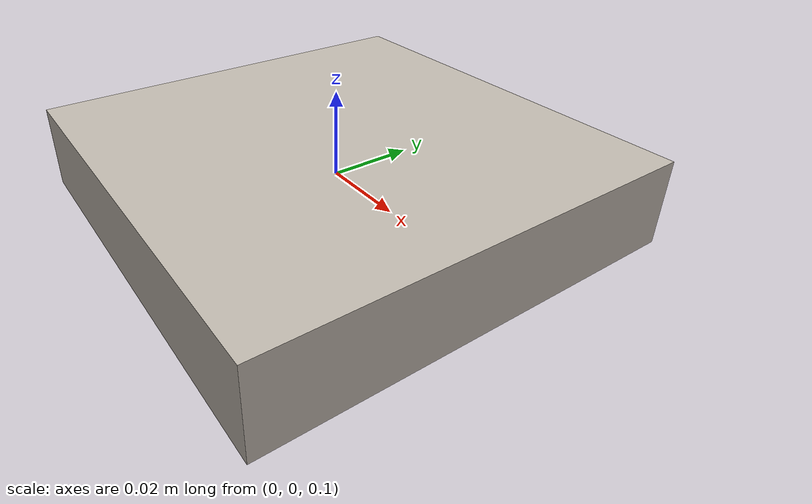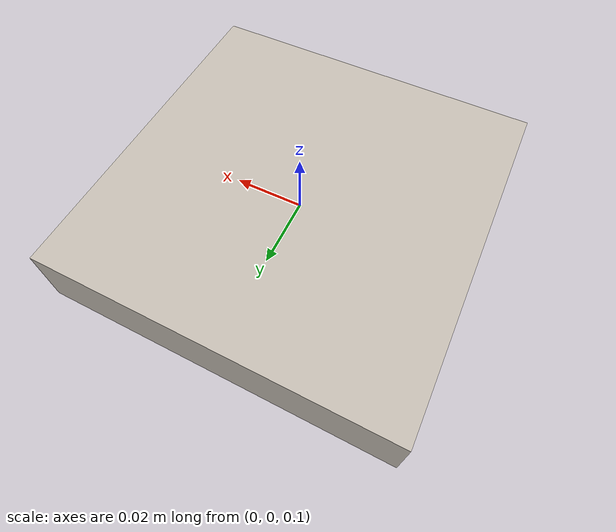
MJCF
<mujoco model="gltf_textured">
  <asset>
    <texture name="tex1" type="2d" file="textures/10x10.png"/>
    <material name="mat1" texture="tex1"/>
  </asset>
  <worldbody>
    <body name="box" pos="0 0 0.1">
      <geom type="box" size=".05 .05 .01" material="mat1"/>
    </body>
  </worldbody>
</mujoco>
